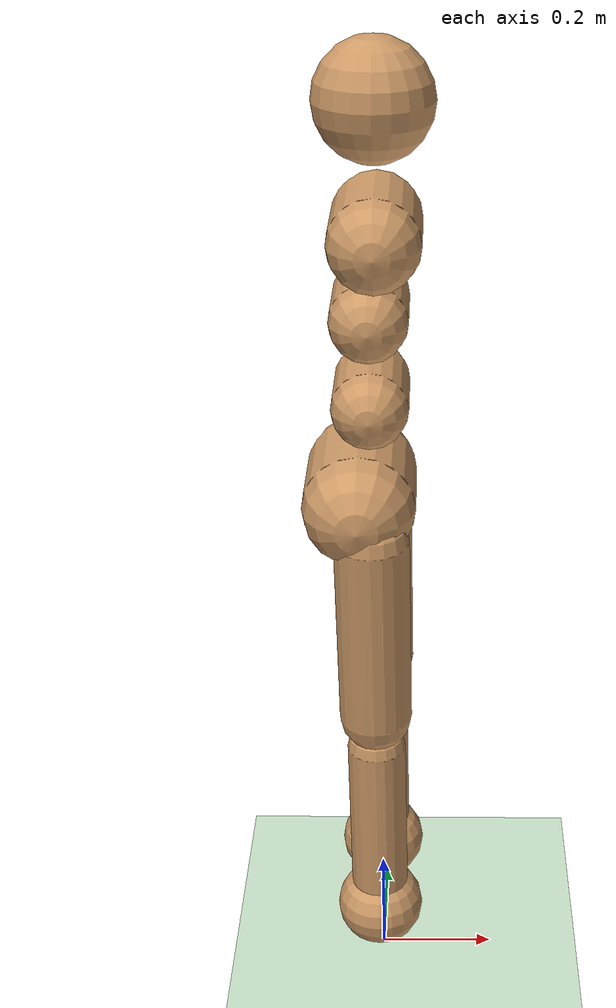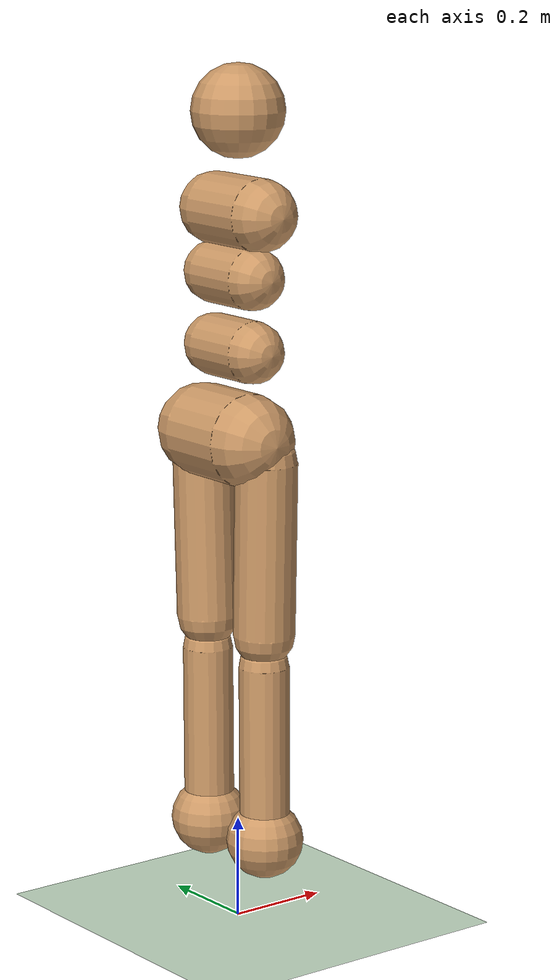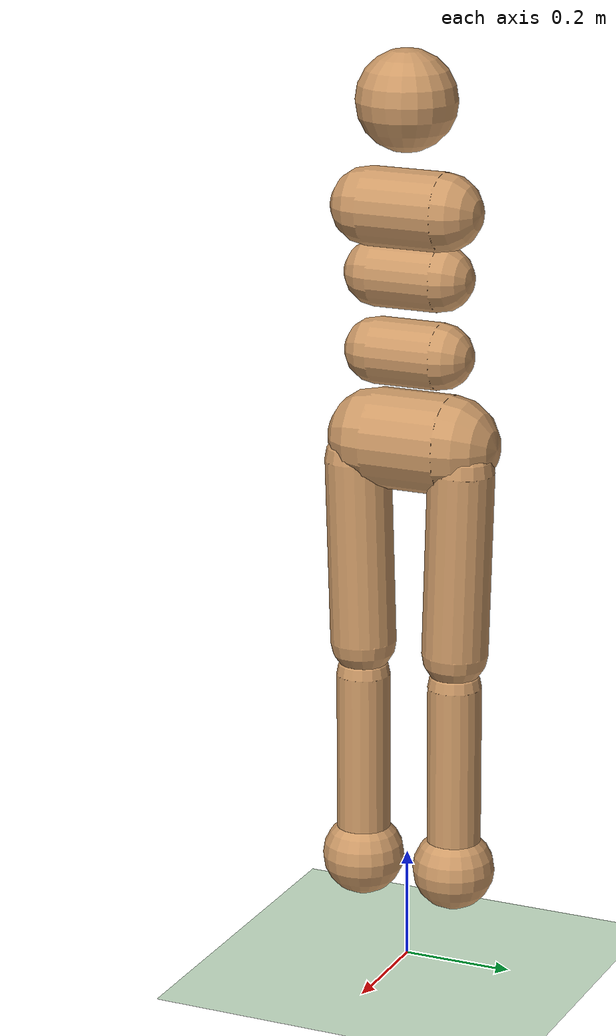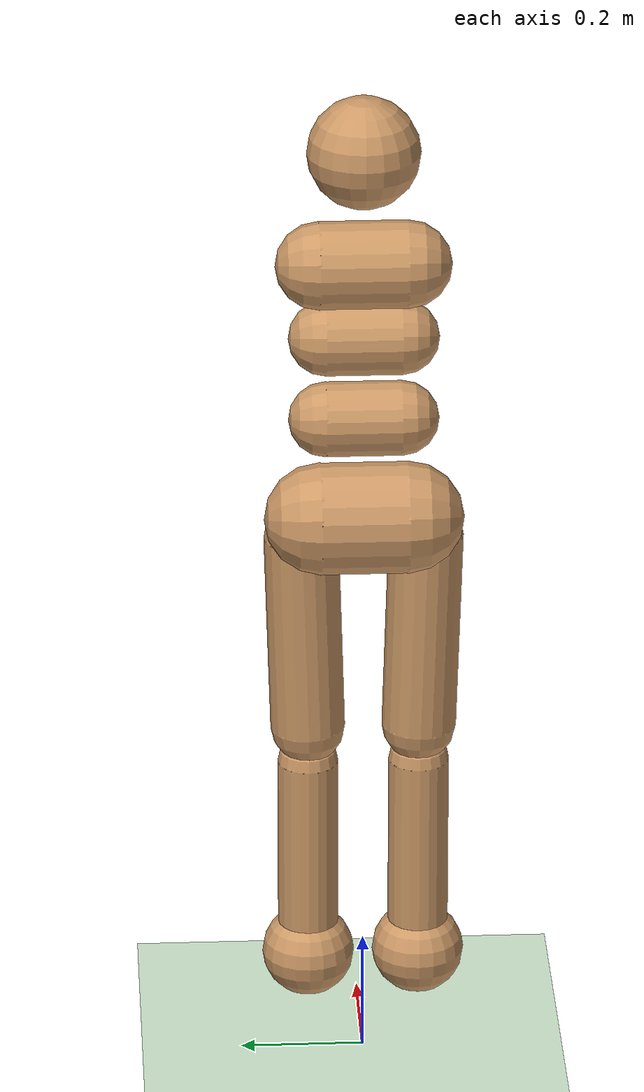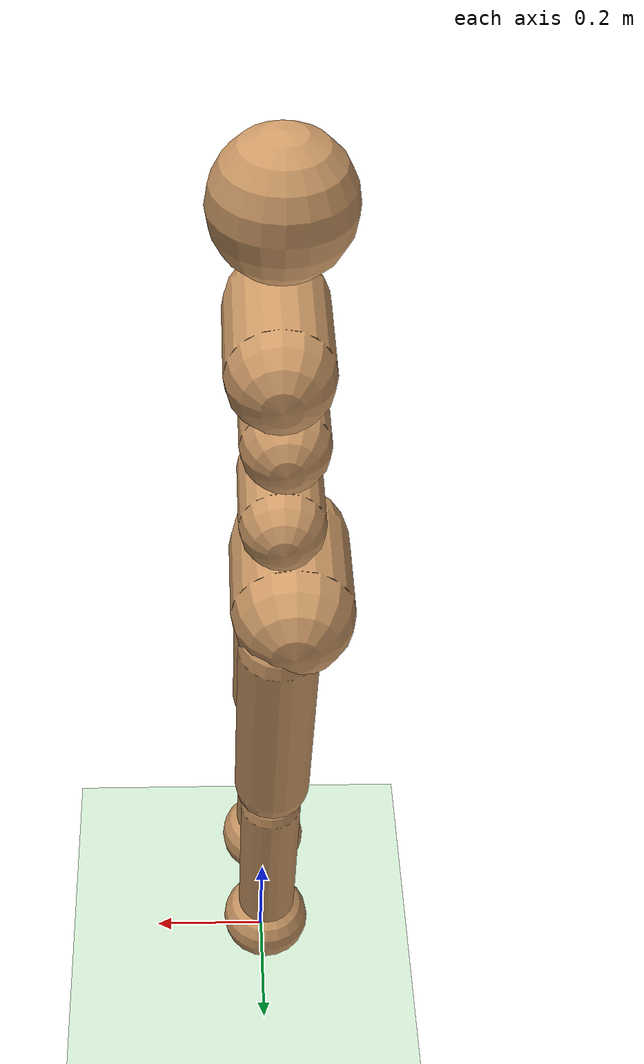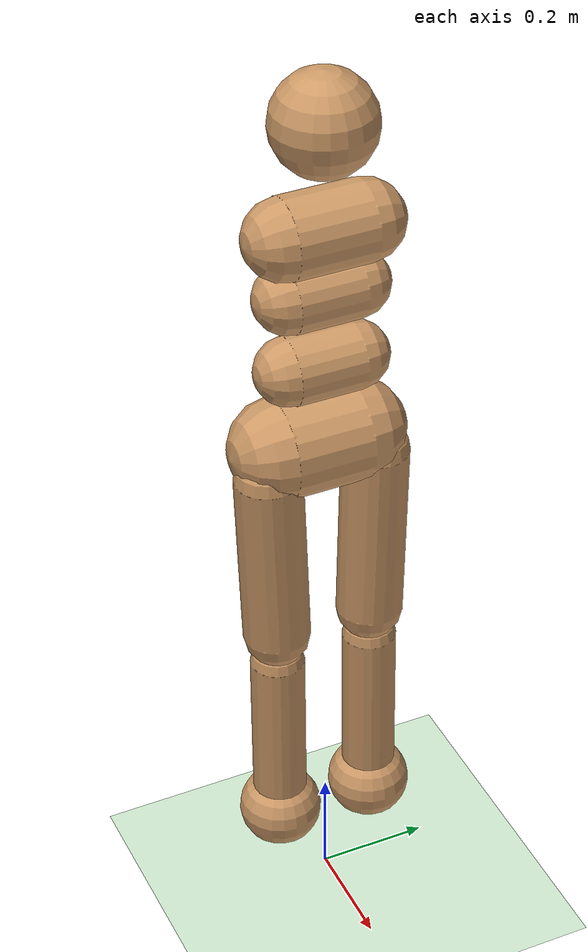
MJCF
<mujoco model="humanoid">
    <compiler angle="degree" inertiafromgeom="true"/>
    <default>
        <joint armature="1" damping="1" limited="true"/>
        <geom conaffinity="1" condim="1" contype="1" margin="0.001" material="geom" rgba="0.8 0.6 .4 1"/>
        <motor ctrllimited="true" ctrlrange="-.4 .4"/>
    </default>
    <option integrator="RK4" iterations="50" solver="PGS" timestep="0.003">
    </option>
    <size nkey="5" nuser_geom="1"/>
    <visual>
        <map fogend="5" fogstart="3"/>
    </visual>
    <asset>
        <texture builtin="gradient" height="100" rgb1=".4 .5 .6" rgb2="0 0 0" type="skybox" width="100"/>
        <texture builtin="flat" height="1278" mark="cross" markrgb="1 1 1" name="texgeom" random="0.01" rgb1="0.8 0.6 0.4" rgb2="0.8 0.6 0.4" type="cube" width="127"/>
        <texture builtin="checker" height="100" name="texplane" rgb1="0 0 0" rgb2="0.8 0.8 0.8" type="2d" width="100"/>
        <material name="MatPlane" reflectance="0.5" shininess="1" specular="1" texrepeat="60 60" texture="texplane"/>
        <material name="geom" texture="texgeom" texuniform="true"/>
        <material name="mocap_material" rgba="0.3 0.9 0.3 0.3" emission="0.5"/>
    </asset>
    <worldbody>
        <light cutoff="100" diffuse="1 1 1" dir="-0 0 -1.3" directional="true" exponent="1" pos="0 0 1.3" specular=".1 .1 .1"/>
        <geom condim="3" friction="1 .1 .1" material="MatPlane" name="floor" pos="0 0 0" rgba="0.8 0.9 0.8 1" size="100 100 0.125" type="plane"/>

        <body name="torso" pos="0 0 1.4">
            <camera name="track" mode="trackcom" pos="0 -4 0" xyaxes="1 0 0 0 0 1"/>
            <joint armature="0" damping="0" limited="false" name="root" pos="0 0 0" stiffness="0" type="free"/>
            <geom fromto="0 -.07 0 0 .07 0" name="torso1" size="0.07" type="capsule"/>
            <geom name="head" pos="0 0 0.19" size="0.09" type="sphere" user="258"/>
            <geom fromto="-.01 -.06 -.12 -.01 .06 -.12" name="uwaist" size="0.06" type="capsule"/>
            <body name="lwaist" pos="-0.01 0 -0.260" quat="1.000 0 -0.002 0">
                <geom fromto="0 -0.06 0 0 0.06 0" name="lwaist" size="0.06" type="capsule"/>
                <joint armature="0.02" axis="0 0 1" damping="5" name="abdomen_z" pos="0 0 0.065" range="-45 45" stiffness="20" type="hinge"/>
                <joint armature="0.02" axis="0 1 0" damping="5" name="abdomen_y" pos="0 0 0.065" range="-75 30" stiffness="10" type="hinge"/>
                <body name="pelvis" pos="0 0 -0.165" quat="1.000 0 -0.002 0">
                    <joint armature="0.02" axis="1 0 0" damping="5" name="abdomen_x" pos="0 0 0.1" range="-35 35" stiffness="10" type="hinge"/>
                    <geom fromto="-0.02 -0.07 0 -0.02 0.07 0" name="butt" size="0.09" type="capsule"/>
                    <body name="right_thigh" pos="0 -0.1 -0.04">
                        <joint armature="0.01" axis="1 0 0" damping="5" name="right_hip_x" pos="0 0 0" range="-25 5" stiffness="10" type="hinge"/>
                        <joint armature="0.01" axis="0 0 1" damping="5" name="right_hip_z" pos="0 0 0" range="-60 35" stiffness="10" type="hinge"/>
                        <joint armature="0.0080" axis="0 1 0" damping="5" name="right_hip_y" pos="0 0 0" range="-110 20" stiffness="20" type="hinge"/>
                        <geom fromto="0 0 0 0 0.01 -0.34" name="right_thigh1" size="0.06" type="capsule"/>
                        <body name="right_shin" pos="0 0.01 -0.403">
                            <joint armature="0.0060" axis="0 -1 0" name="right_knee" pos="0 0 0.02" range="-160 -2" type="hinge"/>
                            <geom fromto="0 0 0 0 0 -0.3" name="right_shin1" size="0.049" type="capsule"/>
                            <body name="right_foot" pos="0 0 -0.45">
                                <geom name="right_foot" pos="0 0 0.1" size="0.075" type="sphere" user="0"/>
                            </body>
                        </body>
                    </body>
                    <body name="left_thigh" pos="0 0.1 -0.04">
                        <joint armature="0.01" axis="-1 0 0" damping="5" name="left_hip_x" pos="0 0 0" range="-25 5" stiffness="10" type="hinge"/>
                        <joint armature="0.01" axis="0 0 -1" damping="5" name="left_hip_z" pos="0 0 0" range="-60 35" stiffness="10" type="hinge"/>
                        <joint armature="0.01" axis="0 1 0" damping="5" name="left_hip_y" pos="0 0 0" range="-110 20" stiffness="20" type="hinge"/>
                        <geom fromto="0 0 0 0 -0.01 -0.34" name="left_thigh1" size="0.06" type="capsule"/>
                        <body name="left_shin" pos="0 -0.01 -0.403">
                            <joint armature="0.0060" axis="0 -1 0" name="left_knee" pos="0 0 0.02" range="-160 -2" stiffness="1" type="hinge"/>
                            <geom fromto="0 0 0 0 0 -0.3" name="left_shin1" size="0.049" type="capsule"/>
                            <body name="left_foot" pos="0 0 -0.45">
                                <geom name="left_foot" pos="0 0 0.1" size="0.075" type="sphere" user="0"/>
                            </body>
                        </body>
                    </body>
                </body>
            </body>
        </body>

        <!-- For reference -->
        <body name="ref_torso" pos="0 0 1.4">
            <camera name="ref_track" mode="trackcom" pos="0 -4 0" xyaxes="1 0 0 0 0 1"/>
            <joint armature="0" damping="0" limited="false" name="ref_root" pos="0 0 0" stiffness="0" type="free"/>
            <geom conaffinity="0" contype="0" fromto="0 -.07 0 0 .07 0" name="ref_torso1" size="0.07" type="capsule" rgba="0.3 0.9 0.3 0.3"/>
            <geom conaffinity="0" contype="0" name="ref_head" pos="0 0 0.19" size="0.09" type="sphere" rgba="0.3 0.9 0.3 0.3"/>
            <geom conaffinity="0" contype="0" fromto="-.01 -.06 -.12 -.01 .06 -.12" name="ref_uwaist" size="0.06" type="capsule" rgba="0.3 0.9 0.3 0.3"/>
            <body name="ref_lwaist" pos="-0.01 0 -0.260" quat="1.000 0 -0.002 0">
                <geom conaffinity="0" contype="0" fromto="0 -0.06 0 0 0.06 0" name="ref_lwaist" size="0.06" type="capsule" rgba="0.3 0.9 0.3 0.3"/>
                <joint armature="0.02" axis="0 0 1" damping="5" name="ref_abdomen_z" pos="0 0 0.065" range="-45 45" stiffness="20" type="hinge"/>
                <joint armature="0.02" axis="0 1 0" damping="5" name="ref_abdomen_y" pos="0 0 0.065" range="-75 30" stiffness="10" type="hinge"/>
                <body name="ref_pelvis" pos="0 0 -0.165" quat="1.000 0 -0.002 0">
                    <joint armature="0.02" axis="1 0 0" damping="5" name="ref_abdomen_x" pos="0 0 0.1" range="-35 35" stiffness="10" type="hinge"/>
                    <geom conaffinity="0" contype="0" fromto="-0.02 -0.07 0 -0.02 0.07 0" name="ref_butt" size="0.09" type="capsule" rgba="0.3 0.9 0.3 0.3"/>
                    <body name="ref_right_thigh" pos="0 -0.1 -0.04">
                        <joint armature="0.01" axis="1 0 0" damping="5" name="ref_right_hip_x" pos="0 0 0" range="-25 5" stiffness="10" type="hinge"/>
                        <joint armature="0.01" axis="0 0 1" damping="5" name="ref_right_hip_z" pos="0 0 0" range="-60 35" stiffness="10" type="hinge"/>
                        <joint armature="0.0080" axis="0 1 0" damping="5" name="ref_right_hip_y" pos="0 0 0" range="-110 20" stiffness="20" type="hinge"/>
                        <geom conaffinity="0" contype="0" fromto="0 0 0 0 0.01 -0.34" name="ref_right_thigh1" size="0.06" type="capsule" rgba="0.3 0.9 0.3 0.3"/>
                        <body name="ref_right_shin" pos="0 0.01 -0.403">
                            <joint armature="0.0060" axis="0 -1 0" name="ref_right_knee" pos="0 0 0.02" range="-160 -2" type="hinge"/>
                            <geom conaffinity="0" contype="0" fromto="0 0 0 0 0 -0.3" name="ref_right_shin1" size="0.049" type="capsule" rgba="0.3 0.9 0.3 0.3"/>
                            <body name="ref_right_foot" pos="0 0 -0.45">
                                <geom conaffinity="0" contype="0" name="ref_right_foot" pos="0 0 0.1" size="0.075" type="sphere" rgba="0.3 0.9 0.3 0.3"/>
                            </body>
                        </body>
                    </body>
                    <body name="ref_left_thigh" pos="0 0.1 -0.04">
                        <joint armature="0.01" axis="-1 0 0" damping="5" name="ref_left_hip_x" pos="0 0 0" range="-25 5" stiffness="10" type="hinge"/>
                        <joint armature="0.01" axis="0 0 -1" damping="5" name="ref_left_hip_z" pos="0 0 0" range="-60 35" stiffness="10" type="hinge"/>
                        <joint armature="0.01" axis="0 1 0" damping="5" name="ref_left_hip_y" pos="0 0 0" range="-110 20" stiffness="20" type="hinge"/>
                        <geom conaffinity="0" contype="0" fromto="0 0 0 0 -0.01 -0.34" name="ref_left_thigh1" size="0.06" type="capsule" rgba="0.3 0.9 0.3 0.3"/>
                        <body name="ref_left_shin" pos="0 -0.01 -0.403">
                            <joint armature="0.0060" axis="0 -1 0" name="ref_left_knee" pos="0 0 0.02" range="-160 -2" stiffness="1" type="hinge"/>
                            <geom conaffinity="0" contype="0" fromto="0 0 0 0 0 -0.3" name="ref_left_shin1" size="0.049" type="capsule" rgba="0.3 0.9 0.3 0.3"/>
                            <body name="ref_left_foot" pos="0 0 -0.45">
                                <geom conaffinity="0" contype="0" name="ref_left_foot" pos="0 0 0.1" size="0.075" type="sphere" rgba="0.3 0.9 0.3 0.3"/>
                            </body>
                        </body>
                    </body>
                </body>
            </body>
        </body>

    </worldbody>
    <actuator>

        <motor gear="100" joint="abdomen_z" name="abdomen_z"/>
        <motor gear="100" joint="abdomen_y" name="abdomen_y"/>
        <motor gear="100" joint="abdomen_x" name="abdomen_x"/>

        <motor gear="100" joint="right_hip_x" name="right_hip_x"/>
        <motor gear="100" joint="right_hip_z" name="right_hip_z"/>
        <motor gear="300" joint="right_hip_y" name="right_hip_y"/>
        <motor gear="200" joint="right_knee" name="right_knee"/>

        <motor gear="100" joint="left_hip_x" name="left_hip_x"/>
        <motor gear="100" joint="left_hip_z" name="left_hip_z"/>
        <motor gear="300" joint="left_hip_y" name="left_hip_y"/>
        <motor gear="200" joint="left_knee" name="left_knee"/>
    </actuator>
</mujoco>
